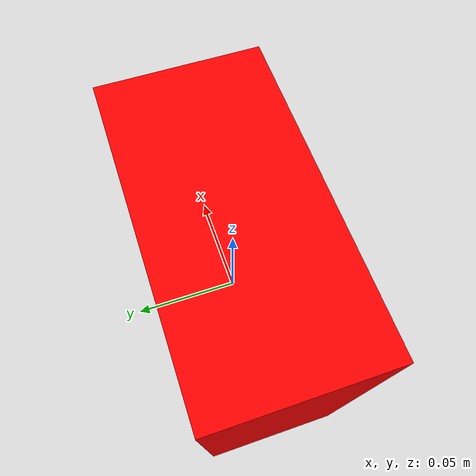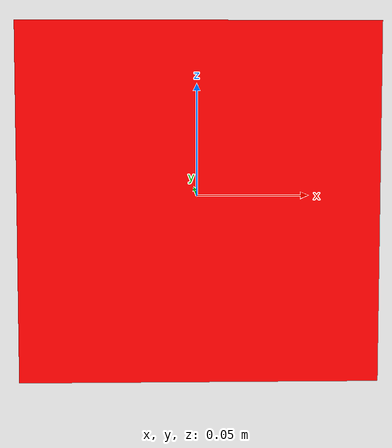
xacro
<?xml version="1.0"?>
<robot name="red_cube_gazebo" xmlns:xacro="http://www.ros.org/wiki/xacro">

    <xacro:property name="PI" value="3.1415926535897931" />

    <xacro:include filename="$(find mobiman_simulation)/urdf/package.urdf.xacro"/>

    <xacro:package
        prefix="red_cube"
        color="Red"
        mass="0.1"
        box_size_x="0.15"
        box_size_y="0.075"
        box_size_z="0.15" >
    </xacro:package>

</robot>

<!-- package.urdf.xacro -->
<robot name="package_gazebo" xmlns:xacro="http://www.ros.org/wiki/xacro">

    <xacro:property name="PI" value="3.1415926535897931" />

    <material name="Red"><color rgba="1 0 0 1"/></material>
    <material name="Green"><color rgba="0 1 0 1"/></material>
    <material name="Blue"><color rgba="0 0 1 1"/></material>
    <material name="White"><color rgba="1 1 1 1"/></material>

    <xacro:macro name="package" params="prefix
                                        color
                                        mass
                                        box_size_x
                                        box_size_y
                                        box_size_z">

        <link name="${prefix}_base_link">
            <inertial>
                <origin rpy="0.0 0.0 0.0" xyz="0.0 0.0 0.0"/>
                <mass value="${mass}"/>
                <!--inertia ixx="4.166666666666668e-05" ixy="0.0" ixz="0.0" iyy="4.166666666666668e-05" iyz="0.0" izz="4.166666666666668e-05"/-->
                <inertia
                    ixx="1.0" ixy="0.0" ixz="0.0"
                    iyy="1.0" iyz="0.0"
                    izz="1.0"/>
            </inertial>

            <visual>
                <origin rpy="0.0 0.0 0.0" xyz="0.0 0.0 0.0"/>
                <geometry>
                    <box size="${box_size_x} ${box_size_y} ${box_size_z}"/>
                </geometry>
                <material name="${color}" />
            </visual>

            <collision>
                <origin rpy="0.0 0.0 0.0" xyz="0.0 0.0 0.0"/>
                <geometry>
                    <box size="${box_size_x} ${box_size_y} ${box_size_z}"/>
                </geometry>
            </collision>
        </link>

        <gazebo reference="${prefix}_base_link">
            <material>Gazebo/${color}</material>
            <gravity>0</gravity>
        </gazebo>

    </xacro:macro>

</robot>
